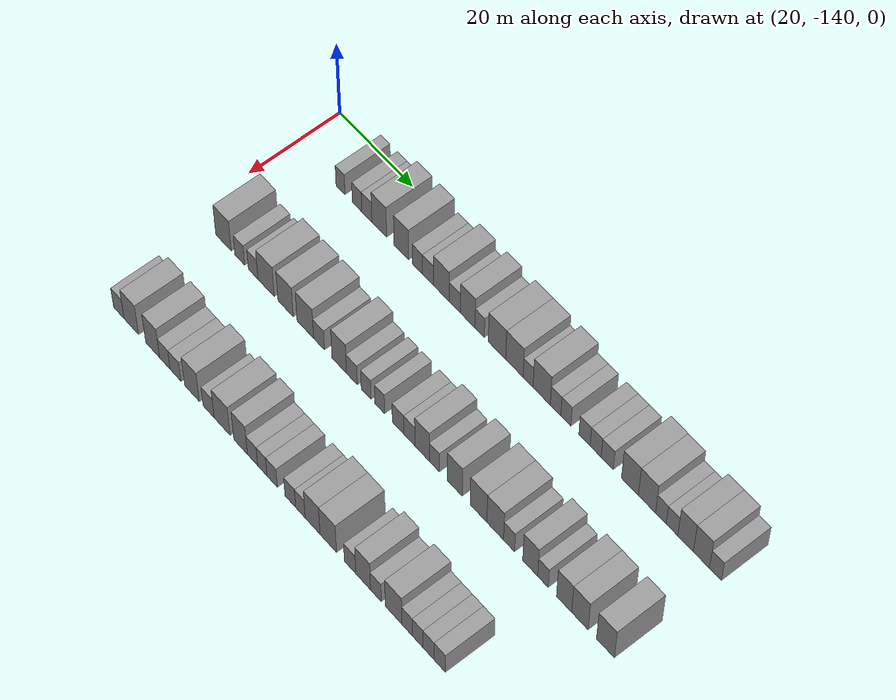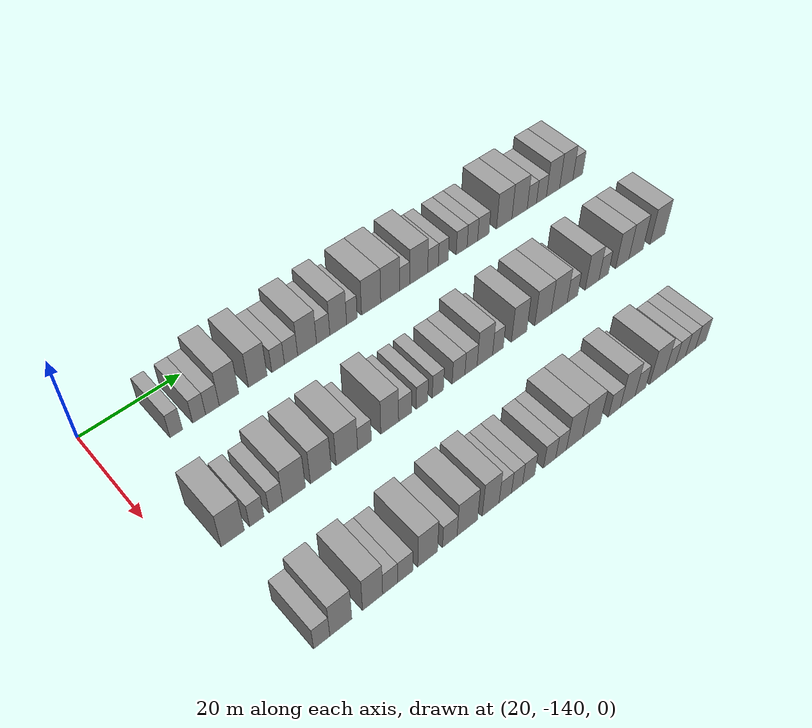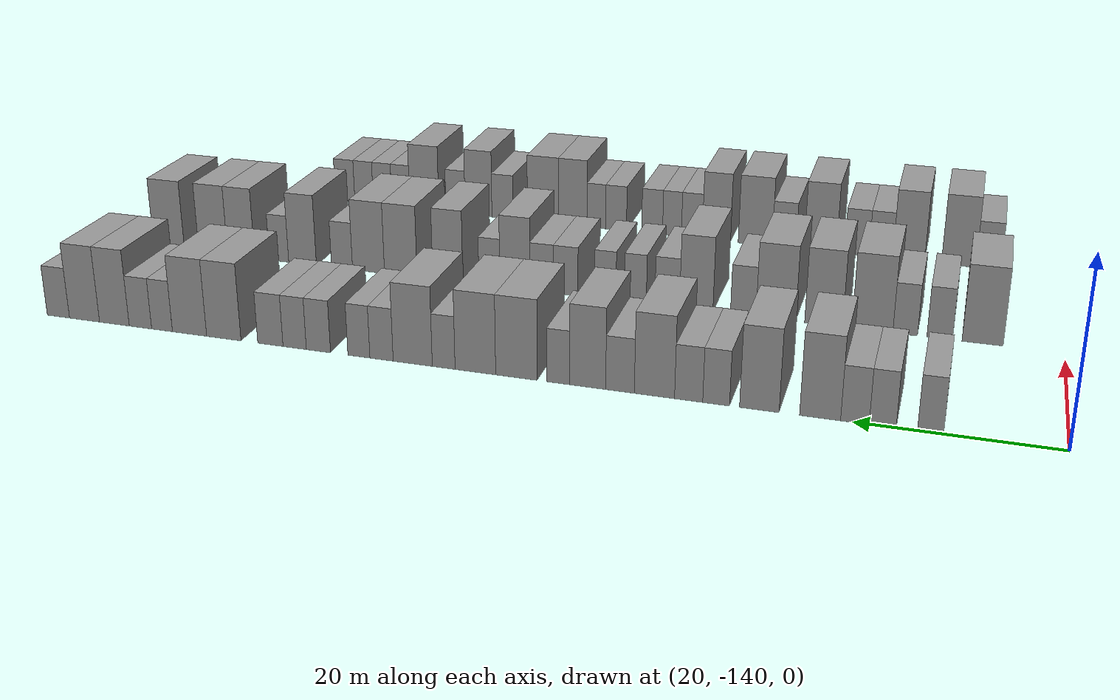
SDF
<sdf version="1.6">
 <world name="default">
  <model name="building_61">
   <static>1</static>
   <pose>25.0000 -127.3157 0 0.000000 0.000000 0.000000</pose>
   <link name="link">
    <pose>0 0 3.00 0 0 0</pose>
    <collision name="collision"><geometry><box><size>10.0000 2.4421 6.0000</size></box></geometry></collision>
    <visual name="visual">
     <cast_shadows>0</cast_shadows>
     <geometry><box><size>10.0000 2.4421 6.0000</size></box></geometry>
     <material>
      <script>
       <uri>model://grey_wall/materials/scripts</uri>
       <uri>model://grey_wall/materials/textures</uri>
       <name>vrc/grey_wall</name>
      </script>
     </material>
    </visual>
   </link>
  </model>
  <model name="building_62">
   <static>1</static>
   <pose>25.0000 -122.8152 0 0.000000 0.000000 0.000000</pose>
   <link name="link">
    <pose>0 0 3.00 0 0 0</pose>
    <collision name="collision"><geometry><box><size>10.0000 2.5589 6.0000</size></box></geometry></collision>
    <visual name="visual">
     <cast_shadows>0</cast_shadows>
     <geometry><box><size>10.0000 2.5589 6.0000</size></box></geometry>
     <material>
      <script>
       <uri>model://grey_wall/materials/scripts</uri>
       <uri>model://grey_wall/materials/textures</uri>
       <name>vrc/grey_wall</name>
      </script>
     </material>
    </visual>
   </link>
  </model>
  <model name="building_63">
   <static>1</static>
   <pose>25.0000 -120.1685 0 0.000000 0.000000 0.000000</pose>
   <link name="link">
    <pose>0 0 3.00 0 0 0</pose>
    <collision name="collision"><geometry><box><size>10.0000 2.7345 6.0000</size></box></geometry></collision>
    <visual name="visual">
     <cast_shadows>0</cast_shadows>
     <geometry><box><size>10.0000 2.7345 6.0000</size></box></geometry>
     <material>
      <script>
       <uri>model://grey_wall/materials/scripts</uri>
       <uri>model://grey_wall/materials/textures</uri>
       <name>vrc/grey_wall</name>
      </script>
     </material>
    </visual>
   </link>
  </model>
  <model name="building_64">
   <static>1</static>
   <pose>25.0000 -116.8165 0 0.000000 0.000000 0.000000</pose>
   <link name="link">
    <pose>0 0 4.50 0 0 0</pose>
    <collision name="collision"><geometry><box><size>10.0000 3.9694 9.0000</size></box></geometry></collision>
    <visual name="visual">
     <cast_shadows>0</cast_shadows>
     <geometry><box><size>10.0000 3.9694 9.0000</size></box></geometry>
     <material>
      <script>
       <uri>model://grey_wall/materials/scripts</uri>
       <uri>model://grey_wall/materials/textures</uri>
       <name>vrc/grey_wall</name>
      </script>
     </material>
    </visual>
   </link>
  </model>
  <model name="building_65">
   <static>1</static>
   <pose>25.0000 -110.8761 0 0.000000 0.000000 0.000000</pose>
   <link name="link">
    <pose>0 0 4.50 0 0 0</pose>
    <collision name="collision"><geometry><box><size>10.0000 3.9116 9.0000</size></box></geometry></collision>
    <visual name="visual">
     <cast_shadows>0</cast_shadows>
     <geometry><box><size>10.0000 3.9116 9.0000</size></box></geometry>
     <material>
      <script>
       <uri>model://grey_wall/materials/scripts</uri>
       <uri>model://grey_wall/materials/textures</uri>
       <name>vrc/grey_wall</name>
      </script>
     </material>
    </visual>
   </link>
  </model>
  <model name="building_66">
   <static>1</static>
   <pose>25.0000 -106.5734 0 0.000000 0.000000 0.000000</pose>
   <link name="link">
    <pose>0 0 3.00 0 0 0</pose>
    <collision name="collision"><geometry><box><size>10.0000 2.6937 6.0000</size></box></geometry></collision>
    <visual name="visual">
     <cast_shadows>0</cast_shadows>
     <geometry><box><size>10.0000 2.6937 6.0000</size></box></geometry>
     <material>
      <script>
       <uri>model://grey_wall/materials/scripts</uri>
       <uri>model://grey_wall/materials/textures</uri>
       <name>vrc/grey_wall</name>
      </script>
     </material>
    </visual>
   </link>
  </model>
  <model name="building_67">
   <static>1</static>
   <pose>25.0000 -103.7981 0 0.000000 0.000000 0.000000</pose>
   <link name="link">
    <pose>0 0 3.00 0 0 0</pose>
    <collision name="collision"><geometry><box><size>10.0000 2.8570 6.0000</size></box></geometry></collision>
    <visual name="visual">
     <cast_shadows>0</cast_shadows>
     <geometry><box><size>10.0000 2.8570 6.0000</size></box></geometry>
     <material>
      <script>
       <uri>model://grey_wall/materials/scripts</uri>
       <uri>model://grey_wall/materials/textures</uri>
       <name>vrc/grey_wall</name>
      </script>
     </material>
    </visual>
   </link>
  </model>
  <model name="building_68">
   <static>1</static>
   <pose>25.0000 -100.3039 0 0.000000 0.000000 0.000000</pose>
   <link name="link">
    <pose>0 0 4.50 0 0 0</pose>
    <collision name="collision"><geometry><box><size>10.0000 4.1313 9.0000</size></box></geometry></collision>
    <visual name="visual">
     <cast_shadows>0</cast_shadows>
     <geometry><box><size>10.0000 4.1313 9.0000</size></box></geometry>
     <material>
      <script>
       <uri>model://grey_wall/materials/scripts</uri>
       <uri>model://grey_wall/materials/textures</uri>
       <name>vrc/grey_wall</name>
      </script>
     </material>
    </visual>
   </link>
  </model>
  <model name="building_69">
   <static>1</static>
   <pose>25.0000 -96.7492 0 0.000000 0.000000 0.000000</pose>
   <link name="link">
    <pose>0 0 3.00 0 0 0</pose>
    <collision name="collision"><geometry><box><size>10.0000 2.9780 6.0000</size></box></geometry></collision>
    <visual name="visual">
     <cast_shadows>0</cast_shadows>
     <geometry><box><size>10.0000 2.9780 6.0000</size></box></geometry>
     <material>
      <script>
       <uri>model://grey_wall/materials/scripts</uri>
       <uri>model://grey_wall/materials/textures</uri>
       <name>vrc/grey_wall</name>
      </script>
     </material>
    </visual>
   </link>
  </model>
  <model name="building_70">
   <static>1</static>
   <pose>25.0000 -93.3623 0 0.000000 0.000000 0.000000</pose>
   <link name="link">
    <pose>0 0 4.50 0 0 0</pose>
    <collision name="collision"><geometry><box><size>10.0000 3.7958 9.0000</size></box></geometry></collision>
    <visual name="visual">
     <cast_shadows>0</cast_shadows>
     <geometry><box><size>10.0000 3.7958 9.0000</size></box></geometry>
     <material>
      <script>
       <uri>model://grey_wall/materials/scripts</uri>
       <uri>model://grey_wall/materials/textures</uri>
       <name>vrc/grey_wall</name>
      </script>
     </material>
    </visual>
   </link>
  </model>
  <model name="building_71">
   <static>1</static>
   <pose>25.0000 -90.2503 0 0.000000 0.000000 0.000000</pose>
   <link name="link">
    <pose>0 0 3.00 0 0 0</pose>
    <collision name="collision"><geometry><box><size>10.0000 2.4283 6.0000</size></box></geometry></collision>
    <visual name="visual">
     <cast_shadows>0</cast_shadows>
     <geometry><box><size>10.0000 2.4283 6.0000</size></box></geometry>
     <material>
      <script>
       <uri>model://grey_wall/materials/scripts</uri>
       <uri>model://grey_wall/materials/textures</uri>
       <name>vrc/grey_wall</name>
      </script>
     </material>
    </visual>
   </link>
  </model>
  <model name="building_72">
   <static>1</static>
   <pose>25.0000 -85.7949 0 0.000000 0.000000 0.000000</pose>
   <link name="link">
    <pose>0 0 4.50 0 0 0</pose>
    <collision name="collision"><geometry><box><size>10.0000 4.4824 9.0000</size></box></geometry></collision>
    <visual name="visual">
     <cast_shadows>0</cast_shadows>
     <geometry><box><size>10.0000 4.4824 9.0000</size></box></geometry>
     <material>
      <script>
       <uri>model://grey_wall/materials/scripts</uri>
       <uri>model://grey_wall/materials/textures</uri>
       <name>vrc/grey_wall</name>
      </script>
     </material>
    </visual>
   </link>
  </model>
  <model name="building_73">
   <static>1</static>
   <pose>25.0000 -81.3337 0 0.000000 0.000000 0.000000</pose>
   <link name="link">
    <pose>0 0 4.50 0 0 0</pose>
    <collision name="collision"><geometry><box><size>10.0000 4.4401 9.0000</size></box></geometry></collision>
    <visual name="visual">
     <cast_shadows>0</cast_shadows>
     <geometry><box><size>10.0000 4.4401 9.0000</size></box></geometry>
     <material>
      <script>
       <uri>model://grey_wall/materials/scripts</uri>
       <uri>model://grey_wall/materials/textures</uri>
       <name>vrc/grey_wall</name>
      </script>
     </material>
    </visual>
   </link>
  </model>
  <model name="building_74">
   <static>1</static>
   <pose>25.0000 -77.8510 0 0.000000 0.000000 0.000000</pose>
   <link name="link">
    <pose>0 0 3.00 0 0 0</pose>
    <collision name="collision"><geometry><box><size>10.0000 2.5253 6.0000</size></box></geometry></collision>
    <visual name="visual">
     <cast_shadows>0</cast_shadows>
     <geometry><box><size>10.0000 2.5253 6.0000</size></box></geometry>
     <material>
      <script>
       <uri>model://grey_wall/materials/scripts</uri>
       <uri>model://grey_wall/materials/textures</uri>
       <name>vrc/grey_wall</name>
      </script>
     </material>
    </visual>
   </link>
  </model>
  <model name="building_75">
   <static>1</static>
   <pose>25.0000 -74.3965 0 0.000000 0.000000 0.000000</pose>
   <link name="link">
    <pose>0 0 4.50 0 0 0</pose>
    <collision name="collision"><geometry><box><size>10.0000 4.3838 9.0000</size></box></geometry></collision>
    <visual name="visual">
     <cast_shadows>0</cast_shadows>
     <geometry><box><size>10.0000 4.3838 9.0000</size></box></geometry>
     <material>
      <script>
       <uri>model://grey_wall/materials/scripts</uri>
       <uri>model://grey_wall/materials/textures</uri>
       <name>vrc/grey_wall</name>
      </script>
     </material>
    </visual>
   </link>
  </model>
  <model name="building_76">
   <static>1</static>
   <pose>25.0000 -70.8849 0 0.000000 0.000000 0.000000</pose>
   <link name="link">
    <pose>0 0 3.00 0 0 0</pose>
    <collision name="collision"><geometry><box><size>10.0000 2.6394 6.0000</size></box></geometry></collision>
    <visual name="visual">
     <cast_shadows>0</cast_shadows>
     <geometry><box><size>10.0000 2.6394 6.0000</size></box></geometry>
     <material>
      <script>
       <uri>model://grey_wall/materials/scripts</uri>
       <uri>model://grey_wall/materials/textures</uri>
       <name>vrc/grey_wall</name>
      </script>
     </material>
    </visual>
   </link>
  </model>
  <model name="building_77">
   <static>1</static>
   <pose>25.0000 -68.3097 0 0.000000 0.000000 0.000000</pose>
   <link name="link">
    <pose>0 0 3.00 0 0 0</pose>
    <collision name="collision"><geometry><box><size>10.0000 2.5110 6.0000</size></box></geometry></collision>
    <visual name="visual">
     <cast_shadows>0</cast_shadows>
     <geometry><box><size>10.0000 2.5110 6.0000</size></box></geometry>
     <material>
      <script>
       <uri>model://grey_wall/materials/scripts</uri>
       <uri>model://grey_wall/materials/textures</uri>
       <name>vrc/grey_wall</name>
      </script>
     </material>
    </visual>
   </link>
  </model>
  <model name="building_78">
   <static>1</static>
   <pose>25.0000 -63.6502 0 0.000000 0.000000 0.000000</pose>
   <link name="link">
    <pose>0 0 3.00 0 0 0</pose>
    <collision name="collision"><geometry><box><size>10.0000 2.8079 6.0000</size></box></geometry></collision>
    <visual name="visual">
     <cast_shadows>0</cast_shadows>
     <geometry><box><size>10.0000 2.8079 6.0000</size></box></geometry>
     <material>
      <script>
       <uri>model://grey_wall/materials/scripts</uri>
       <uri>model://grey_wall/materials/textures</uri>
       <name>vrc/grey_wall</name>
      </script>
     </material>
    </visual>
   </link>
  </model>
  <model name="building_79">
   <static>1</static>
   <pose>25.0000 -60.8801 0 0.000000 0.000000 0.000000</pose>
   <link name="link">
    <pose>0 0 3.00 0 0 0</pose>
    <collision name="collision"><geometry><box><size>10.0000 2.7323 6.0000</size></box></geometry></collision>
    <visual name="visual">
     <cast_shadows>0</cast_shadows>
     <geometry><box><size>10.0000 2.7323 6.0000</size></box></geometry>
     <material>
      <script>
       <uri>model://grey_wall/materials/scripts</uri>
       <uri>model://grey_wall/materials/textures</uri>
       <name>vrc/grey_wall</name>
      </script>
     </material>
    </visual>
   </link>
  </model>
  <model name="building_80">
   <static>1</static>
   <pose>25.0000 -58.0221 0 0.000000 0.000000 0.000000</pose>
   <link name="link">
    <pose>0 0 3.00 0 0 0</pose>
    <collision name="collision"><geometry><box><size>10.0000 2.9838 6.0000</size></box></geometry></collision>
    <visual name="visual">
     <cast_shadows>0</cast_shadows>
     <geometry><box><size>10.0000 2.9838 6.0000</size></box></geometry>
     <material>
      <script>
       <uri>model://grey_wall/materials/scripts</uri>
       <uri>model://grey_wall/materials/textures</uri>
       <name>vrc/grey_wall</name>
      </script>
     </material>
    </visual>
   </link>
  </model>
  <model name="building_81">
   <static>1</static>
   <pose>25.0000 -52.4625 0 0.000000 0.000000 0.000000</pose>
   <link name="link">
    <pose>0 0 4.50 0 0 0</pose>
    <collision name="collision"><geometry><box><size>10.0000 4.1354 9.0000</size></box></geometry></collision>
    <visual name="visual">
     <cast_shadows>0</cast_shadows>
     <geometry><box><size>10.0000 4.1354 9.0000</size></box></geometry>
     <material>
      <script>
       <uri>model://grey_wall/materials/scripts</uri>
       <uri>model://grey_wall/materials/textures</uri>
       <name>vrc/grey_wall</name>
      </script>
     </material>
    </visual>
   </link>
  </model>
  <model name="building_82">
   <static>1</static>
   <pose>25.0000 -48.3096 0 0.000000 0.000000 0.000000</pose>
   <link name="link">
    <pose>0 0 4.50 0 0 0</pose>
    <collision name="collision"><geometry><box><size>10.0000 4.1704 9.0000</size></box></geometry></collision>
    <visual name="visual">
     <cast_shadows>0</cast_shadows>
     <geometry><box><size>10.0000 4.1704 9.0000</size></box></geometry>
     <material>
      <script>
       <uri>model://grey_wall/materials/scripts</uri>
       <uri>model://grey_wall/materials/textures</uri>
       <name>vrc/grey_wall</name>
      </script>
     </material>
    </visual>
   </link>
  </model>
  <model name="building_83">
   <static>1</static>
   <pose>25.0000 -44.9430 0 0.000000 0.000000 0.000000</pose>
   <link name="link">
    <pose>0 0 3.00 0 0 0</pose>
    <collision name="collision"><geometry><box><size>10.0000 2.5627 6.0000</size></box></geometry></collision>
    <visual name="visual">
     <cast_shadows>0</cast_shadows>
     <geometry><box><size>10.0000 2.5627 6.0000</size></box></geometry>
     <material>
      <script>
       <uri>model://grey_wall/materials/scripts</uri>
       <uri>model://grey_wall/materials/textures</uri>
       <name>vrc/grey_wall</name>
      </script>
     </material>
    </visual>
   </link>
  </model>
  <model name="building_84">
   <static>1</static>
   <pose>25.0000 -42.2696 0 0.000000 0.000000 0.000000</pose>
   <link name="link">
    <pose>0 0 3.00 0 0 0</pose>
    <collision name="collision"><geometry><box><size>10.0000 2.7843 6.0000</size></box></geometry></collision>
    <visual name="visual">
     <cast_shadows>0</cast_shadows>
     <geometry><box><size>10.0000 2.7843 6.0000</size></box></geometry>
     <material>
      <script>
       <uri>model://grey_wall/materials/scripts</uri>
       <uri>model://grey_wall/materials/textures</uri>
       <name>vrc/grey_wall</name>
      </script>
     </material>
    </visual>
   </link>
  </model>
  <model name="building_85">
   <static>1</static>
   <pose>25.0000 -39.0115 0 0.000000 0.000000 0.000000</pose>
   <link name="link">
    <pose>0 0 4.50 0 0 0</pose>
    <collision name="collision"><geometry><box><size>10.0000 3.7319 9.0000</size></box></geometry></collision>
    <visual name="visual">
     <cast_shadows>0</cast_shadows>
     <geometry><box><size>10.0000 3.7319 9.0000</size></box></geometry>
     <material>
      <script>
       <uri>model://grey_wall/materials/scripts</uri>
       <uri>model://grey_wall/materials/textures</uri>
       <name>vrc/grey_wall</name>
      </script>
     </material>
    </visual>
   </link>
  </model>
  <model name="building_86">
   <static>1</static>
   <pose>25.0000 -35.2371 0 0.000000 0.000000 0.000000</pose>
   <link name="link">
    <pose>0 0 4.50 0 0 0</pose>
    <collision name="collision"><geometry><box><size>10.0000 3.8169 9.0000</size></box></geometry></collision>
    <visual name="visual">
     <cast_shadows>0</cast_shadows>
     <geometry><box><size>10.0000 3.8169 9.0000</size></box></geometry>
     <material>
      <script>
       <uri>model://grey_wall/materials/scripts</uri>
       <uri>model://grey_wall/materials/textures</uri>
       <name>vrc/grey_wall</name>
      </script>
     </material>
    </visual>
   </link>
  </model>
  <model name="building_87">
   <static>1</static>
   <pose>25.0000 -31.9062 0 0.000000 0.000000 0.000000</pose>
   <link name="link">
    <pose>0 0 3.00 0 0 0</pose>
    <collision name="collision"><geometry><box><size>10.0000 2.8450 6.0000</size></box></geometry></collision>
    <visual name="visual">
     <cast_shadows>0</cast_shadows>
     <geometry><box><size>10.0000 2.8450 6.0000</size></box></geometry>
     <material>
      <script>
       <uri>model://grey_wall/materials/scripts</uri>
       <uri>model://grey_wall/materials/textures</uri>
       <name>vrc/grey_wall</name>
      </script>
     </material>
    </visual>
   </link>
  </model>
  <model name="building_251">
   <static>1</static>
   <pose>47.0000 -131.4908 0 0.000000 0.000000 0.000000</pose>
   <link name="link">
    <pose>0 0 4.50 0 0 0</pose>
    <collision name="collision"><geometry><box><size>10.0000 4.2946 9.0000</size></box></geometry></collision>
    <visual name="visual">
     <cast_shadows>0</cast_shadows>
     <geometry><box><size>10.0000 4.2946 9.0000</size></box></geometry>
     <material>
      <script>
       <uri>model://grey_wall/materials/scripts</uri>
       <uri>model://grey_wall/materials/textures</uri>
       <name>vrc/grey_wall</name>
      </script>
     </material>
    </visual>
   </link>
  </model>
  <model name="building_252">
   <static>1</static>
   <pose>47.0000 -126.9876 0 0.000000 0.000000 0.000000</pose>
   <link name="link">
    <pose>0 0 3.00 0 0 0</pose>
    <collision name="collision"><geometry><box><size>10.0000 2.7116 6.0000</size></box></geometry></collision>
    <visual name="visual">
     <cast_shadows>0</cast_shadows>
     <geometry><box><size>10.0000 2.7116 6.0000</size></box></geometry>
     <material>
      <script>
       <uri>model://grey_wall/materials/scripts</uri>
       <uri>model://grey_wall/materials/textures</uri>
       <name>vrc/grey_wall</name>
      </script>
     </material>
    </visual>
   </link>
  </model>
  <model name="building_253">
   <static>1</static>
   <pose>47.0000 -123.3090 0 0.000000 0.000000 0.000000</pose>
   <link name="link">
    <pose>0 0 3.00 0 0 0</pose>
    <collision name="collision"><geometry><box><size>10.0000 2.6456 6.0000</size></box></geometry></collision>
    <visual name="visual">
     <cast_shadows>0</cast_shadows>
     <geometry><box><size>10.0000 2.6456 6.0000</size></box></geometry>
     <material>
      <script>
       <uri>model://grey_wall/materials/scripts</uri>
       <uri>model://grey_wall/materials/textures</uri>
       <name>vrc/grey_wall</name>
      </script>
     </material>
    </visual>
   </link>
  </model>
  <model name="building_254">
   <static>1</static>
   <pose>47.0000 -119.7689 0 0.000000 0.000000 0.000000</pose>
   <link name="link">
    <pose>0 0 4.50 0 0 0</pose>
    <collision name="collision"><geometry><box><size>10.0000 4.4346 9.0000</size></box></geometry></collision>
    <visual name="visual">
     <cast_shadows>0</cast_shadows>
     <geometry><box><size>10.0000 4.4346 9.0000</size></box></geometry>
     <material>
      <script>
       <uri>model://grey_wall/materials/scripts</uri>
       <uri>model://grey_wall/materials/textures</uri>
       <name>vrc/grey_wall</name>
      </script>
     </material>
    </visual>
   </link>
  </model>
  <model name="building_255">
   <static>1</static>
   <pose>47.0000 -114.4624 0 0.000000 0.000000 0.000000</pose>
   <link name="link">
    <pose>0 0 4.50 0 0 0</pose>
    <collision name="collision"><geometry><box><size>10.0000 4.1786 9.0000</size></box></geometry></collision>
    <visual name="visual">
     <cast_shadows>0</cast_shadows>
     <geometry><box><size>10.0000 4.1786 9.0000</size></box></geometry>
     <material>
      <script>
       <uri>model://grey_wall/materials/scripts</uri>
       <uri>model://grey_wall/materials/textures</uri>
       <name>vrc/grey_wall</name>
      </script>
     </material>
    </visual>
   </link>
  </model>
  <model name="building_256">
   <static>1</static>
   <pose>47.0000 -109.1529 0 0.000000 0.000000 0.000000</pose>
   <link name="link">
    <pose>0 0 4.50 0 0 0</pose>
    <collision name="collision"><geometry><box><size>10.0000 4.4403 9.0000</size></box></geometry></collision>
    <visual name="visual">
     <cast_shadows>0</cast_shadows>
     <geometry><box><size>10.0000 4.4403 9.0000</size></box></geometry>
     <material>
      <script>
       <uri>model://grey_wall/materials/scripts</uri>
       <uri>model://grey_wall/materials/textures</uri>
       <name>vrc/grey_wall</name>
      </script>
     </material>
    </visual>
   </link>
  </model>
  <model name="building_257">
   <static>1</static>
   <pose>47.0000 -105.4867 0 0.000000 0.000000 0.000000</pose>
   <link name="link">
    <pose>0 0 3.00 0 0 0</pose>
    <collision name="collision"><geometry><box><size>10.0000 2.8920 6.0000</size></box></geometry></collision>
    <visual name="visual">
     <cast_shadows>0</cast_shadows>
     <geometry><box><size>10.0000 2.8920 6.0000</size></box></geometry>
     <material>
      <script>
       <uri>model://grey_wall/materials/scripts</uri>
       <uri>model://grey_wall/materials/textures</uri>
       <name>vrc/grey_wall</name>
      </script>
     </material>
    </visual>
   </link>
  </model>
  <model name="building_258">
   <static>1</static>
   <pose>47.0000 -100.1195 0 0.000000 0.000000 0.000000</pose>
   <link name="link">
    <pose>0 0 4.50 0 0 0</pose>
    <collision name="collision"><geometry><box><size>10.0000 3.8426 9.0000</size></box></geometry></collision>
    <visual name="visual">
     <cast_shadows>0</cast_shadows>
     <geometry><box><size>10.0000 3.8426 9.0000</size></box></geometry>
     <material>
      <script>
       <uri>model://grey_wall/materials/scripts</uri>
       <uri>model://grey_wall/materials/textures</uri>
       <name>vrc/grey_wall</name>
      </script>
     </material>
    </visual>
   </link>
  </model>
  <model name="building_259">
   <static>1</static>
   <pose>47.0000 -96.7625 0 0.000000 0.000000 0.000000</pose>
   <link name="link">
    <pose>0 0 3.00 0 0 0</pose>
    <collision name="collision"><geometry><box><size>10.0000 2.8714 6.0000</size></box></geometry></collision>
    <visual name="visual">
     <cast_shadows>0</cast_shadows>
     <geometry><box><size>10.0000 2.8714 6.0000</size></box></geometry>
     <material>
      <script>
       <uri>model://grey_wall/materials/scripts</uri>
       <uri>model://grey_wall/materials/textures</uri>
       <name>vrc/grey_wall</name>
      </script>
     </material>
    </visual>
   </link>
  </model>
  <model name="building_260">
   <static>1</static>
   <pose>47.0000 -93.0378 0 0.000000 0.000000 0.000000</pose>
   <link name="link">
    <pose>0 0 3.00 0 0 0</pose>
    <collision name="collision"><geometry><box><size>10.0000 2.5780 6.0000</size></box></geometry></collision>
    <visual name="visual">
     <cast_shadows>0</cast_shadows>
     <geometry><box><size>10.0000 2.5780 6.0000</size></box></geometry>
     <material>
      <script>
       <uri>model://grey_wall/materials/scripts</uri>
       <uri>model://grey_wall/materials/textures</uri>
       <name>vrc/grey_wall</name>
      </script>
     </material>
    </visual>
   </link>
  </model>
  <model name="building_261">
   <static>1</static>
   <pose>47.0000 -89.4829 0 0.000000 0.000000 0.000000</pose>
   <link name="link">
    <pose>0 0 3.00 0 0 0</pose>
    <collision name="collision"><geometry><box><size>10.0000 2.5318 6.0000</size></box></geometry></collision>
    <visual name="visual">
     <cast_shadows>0</cast_shadows>
     <geometry><box><size>10.0000 2.5318 6.0000</size></box></geometry>
     <material>
      <script>
       <uri>model://grey_wall/materials/scripts</uri>
       <uri>model://grey_wall/materials/textures</uri>
       <name>vrc/grey_wall</name>
      </script>
     </material>
    </visual>
   </link>
  </model>
  <model name="building_262">
   <static>1</static>
   <pose>47.0000 -84.7403 0 0.000000 0.000000 0.000000</pose>
   <link name="link">
    <pose>0 0 3.00 0 0 0</pose>
    <collision name="collision"><geometry><box><size>10.0000 2.9535 6.0000</size></box></geometry></collision>
    <visual name="visual">
     <cast_shadows>0</cast_shadows>
     <geometry><box><size>10.0000 2.9535 6.0000</size></box></geometry>
     <material>
      <script>
       <uri>model://grey_wall/materials/scripts</uri>
       <uri>model://grey_wall/materials/textures</uri>
       <name>vrc/grey_wall</name>
      </script>
     </material>
    </visual>
   </link>
  </model>
  <model name="building_263">
   <static>1</static>
   <pose>47.0000 -81.8355 0 0.000000 0.000000 0.000000</pose>
   <link name="link">
    <pose>0 0 3.00 0 0 0</pose>
    <collision name="collision"><geometry><box><size>10.0000 2.8560 6.0000</size></box></geometry></collision>
    <visual name="visual">
     <cast_shadows>0</cast_shadows>
     <geometry><box><size>10.0000 2.8560 6.0000</size></box></geometry>
     <material>
      <script>
       <uri>model://grey_wall/materials/scripts</uri>
       <uri>model://grey_wall/materials/textures</uri>
       <name>vrc/grey_wall</name>
      </script>
     </material>
    </visual>
   </link>
  </model>
  <model name="building_264">
   <static>1</static>
   <pose>47.0000 -78.5680 0 0.000000 0.000000 0.000000</pose>
   <link name="link">
    <pose>0 0 4.50 0 0 0</pose>
    <collision name="collision"><geometry><box><size>10.0000 3.6789 9.0000</size></box></geometry></collision>
    <visual name="visual">
     <cast_shadows>0</cast_shadows>
     <geometry><box><size>10.0000 3.6789 9.0000</size></box></geometry>
     <material>
      <script>
       <uri>model://grey_wall/materials/scripts</uri>
       <uri>model://grey_wall/materials/textures</uri>
       <name>vrc/grey_wall</name>
      </script>
     </material>
    </visual>
   </link>
  </model>
  <model name="building_265">
   <static>1</static>
   <pose>47.0000 -75.4325 0 0.000000 0.000000 0.000000</pose>
   <link name="link">
    <pose>0 0 3.00 0 0 0</pose>
    <collision name="collision"><geometry><box><size>10.0000 2.5922 6.0000</size></box></geometry></collision>
    <visual name="visual">
     <cast_shadows>0</cast_shadows>
     <geometry><box><size>10.0000 2.5922 6.0000</size></box></geometry>
     <material>
      <script>
       <uri>model://grey_wall/materials/scripts</uri>
       <uri>model://grey_wall/materials/textures</uri>
       <name>vrc/grey_wall</name>
      </script>
     </material>
    </visual>
   </link>
  </model>
  <model name="building_266">
   <static>1</static>
   <pose>47.0000 -70.2462 0 0.000000 0.000000 0.000000</pose>
   <link name="link">
    <pose>0 0 4.50 0 0 0</pose>
    <collision name="collision"><geometry><box><size>10.0000 3.7803 9.0000</size></box></geometry></collision>
    <visual name="visual">
     <cast_shadows>0</cast_shadows>
     <geometry><box><size>10.0000 3.7803 9.0000</size></box></geometry>
     <material>
      <script>
       <uri>model://grey_wall/materials/scripts</uri>
       <uri>model://grey_wall/materials/textures</uri>
       <name>vrc/grey_wall</name>
      </script>
     </material>
    </visual>
   </link>
  </model>
  <model name="building_267">
   <static>1</static>
   <pose>47.0000 -64.2700 0 0.000000 0.000000 0.000000</pose>
   <link name="link">
    <pose>0 0 4.50 0 0 0</pose>
    <collision name="collision"><geometry><box><size>10.0000 4.1722 9.0000</size></box></geometry></collision>
    <visual name="visual">
     <cast_shadows>0</cast_shadows>
     <geometry><box><size>10.0000 4.1722 9.0000</size></box></geometry>
     <material>
      <script>
       <uri>model://grey_wall/materials/scripts</uri>
       <uri>model://grey_wall/materials/textures</uri>
       <name>vrc/grey_wall</name>
      </script>
     </material>
    </visual>
   </link>
  </model>
  <model name="building_268">
   <static>1</static>
   <pose>47.0000 -60.1114 0 0.000000 0.000000 0.000000</pose>
   <link name="link">
    <pose>0 0 4.50 0 0 0</pose>
    <collision name="collision"><geometry><box><size>10.0000 4.1449 9.0000</size></box></geometry></collision>
    <visual name="visual">
     <cast_shadows>0</cast_shadows>
     <geometry><box><size>10.0000 4.1449 9.0000</size></box></geometry>
     <material>
      <script>
       <uri>model://grey_wall/materials/scripts</uri>
       <uri>model://grey_wall/materials/textures</uri>
       <name>vrc/grey_wall</name>
      </script>
     </material>
    </visual>
   </link>
  </model>
  <model name="building_269">
   <static>1</static>
   <pose>47.0000 -56.6689 0 0.000000 0.000000 0.000000</pose>
   <link name="link">
    <pose>0 0 3.00 0 0 0</pose>
    <collision name="collision"><geometry><box><size>10.0000 2.7401 6.0000</size></box></geometry></collision>
    <visual name="visual">
     <cast_shadows>0</cast_shadows>
     <geometry><box><size>10.0000 2.7401 6.0000</size></box></geometry>
     <material>
      <script>
       <uri>model://grey_wall/materials/scripts</uri>
       <uri>model://grey_wall/materials/textures</uri>
       <name>vrc/grey_wall</name>
      </script>
     </material>
    </visual>
   </link>
  </model>
  <model name="building_270">
   <static>1</static>
   <pose>47.0000 -51.4565 0 0.000000 0.000000 0.000000</pose>
   <link name="link">
    <pose>0 0 4.50 0 0 0</pose>
    <collision name="collision"><geometry><box><size>10.0000 3.6847 9.0000</size></box></geometry></collision>
    <visual name="visual">
     <cast_shadows>0</cast_shadows>
     <geometry><box><size>10.0000 3.6847 9.0000</size></box></geometry>
     <material>
      <script>
       <uri>model://grey_wall/materials/scripts</uri>
       <uri>model://grey_wall/materials/textures</uri>
       <name>vrc/grey_wall</name>
      </script>
     </material>
    </visual>
   </link>
  </model>
  <model name="building_271">
   <static>1</static>
   <pose>47.0000 -48.3287 0 0.000000 0.000000 0.000000</pose>
   <link name="link">
    <pose>0 0 3.00 0 0 0</pose>
    <collision name="collision"><geometry><box><size>10.0000 2.5707 6.0000</size></box></geometry></collision>
    <visual name="visual">
     <cast_shadows>0</cast_shadows>
     <geometry><box><size>10.0000 2.5707 6.0000</size></box></geometry>
     <material>
      <script>
       <uri>model://grey_wall/materials/scripts</uri>
       <uri>model://grey_wall/materials/textures</uri>
       <name>vrc/grey_wall</name>
      </script>
     </material>
    </visual>
   </link>
  </model>
  <model name="building_272">
   <static>1</static>
   <pose>47.0000 -43.2064 0 0.000000 0.000000 0.000000</pose>
   <link name="link">
    <pose>0 0 4.50 0 0 0</pose>
    <collision name="collision"><geometry><box><size>10.0000 3.6739 9.0000</size></box></geometry></collision>
    <visual name="visual">
     <cast_shadows>0</cast_shadows>
     <geometry><box><size>10.0000 3.6739 9.0000</size></box></geometry>
     <material>
      <script>
       <uri>model://grey_wall/materials/scripts</uri>
       <uri>model://grey_wall/materials/textures</uri>
       <name>vrc/grey_wall</name>
      </script>
     </material>
    </visual>
   </link>
  </model>
  <model name="building_273">
   <static>1</static>
   <pose>47.0000 -39.3895 0 0.000000 0.000000 0.000000</pose>
   <link name="link">
    <pose>0 0 4.50 0 0 0</pose>
    <collision name="collision"><geometry><box><size>10.0000 3.9600 9.0000</size></box></geometry></collision>
    <visual name="visual">
     <cast_shadows>0</cast_shadows>
     <geometry><box><size>10.0000 3.9600 9.0000</size></box></geometry>
     <material>
      <script>
       <uri>model://grey_wall/materials/scripts</uri>
       <uri>model://grey_wall/materials/textures</uri>
       <name>vrc/grey_wall</name>
      </script>
     </material>
    </visual>
   </link>
  </model>
  <model name="building_274">
   <static>1</static>
   <pose>47.0000 -33.2711 0 0.000000 0.000000 0.000000</pose>
   <link name="link">
    <pose>0 0 4.50 0 0 0</pose>
    <collision name="collision"><geometry><box><size>10.0000 4.2769 9.0000</size></box></geometry></collision>
    <visual name="visual">
     <cast_shadows>0</cast_shadows>
     <geometry><box><size>10.0000 4.2769 9.0000</size></box></geometry>
     <material>
      <script>
       <uri>model://grey_wall/materials/scripts</uri>
       <uri>model://grey_wall/materials/textures</uri>
       <name>vrc/grey_wall</name>
      </script>
     </material>
    </visual>
   </link>
  </model>
  <model name="building_439">
   <static>1</static>
   <pose>69.0000 -131.5310 0 0.000000 0.000000 0.000000</pose>
   <link name="link">
    <pose>0 0 3.00 0 0 0</pose>
    <collision name="collision"><geometry><box><size>10.0000 2.9448 6.0000</size></box></geometry></collision>
    <visual name="visual">
     <cast_shadows>0</cast_shadows>
     <geometry><box><size>10.0000 2.9448 6.0000</size></box></geometry>
     <material>
      <script>
       <uri>model://grey_wall/materials/scripts</uri>
       <uri>model://grey_wall/materials/textures</uri>
       <name>vrc/grey_wall</name>
      </script>
     </material>
    </visual>
   </link>
  </model>
  <model name="building_440">
   <static>1</static>
   <pose>69.0000 -128.0361 0 0.000000 0.000000 0.000000</pose>
   <link name="link">
    <pose>0 0 4.50 0 0 0</pose>
    <collision name="collision"><geometry><box><size>10.0000 4.0452 9.0000</size></box></geometry></collision>
    <visual name="visual">
     <cast_shadows>0</cast_shadows>
     <geometry><box><size>10.0000 4.0452 9.0000</size></box></geometry>
     <material>
      <script>
       <uri>model://grey_wall/materials/scripts</uri>
       <uri>model://grey_wall/materials/textures</uri>
       <name>vrc/grey_wall</name>
      </script>
     </material>
    </visual>
   </link>
  </model>
  <model name="building_441">
   <static>1</static>
   <pose>69.0000 -122.1017 0 0.000000 0.000000 0.000000</pose>
   <link name="link">
    <pose>0 0 4.50 0 0 0</pose>
    <collision name="collision"><geometry><box><size>10.0000 3.8236 9.0000</size></box></geometry></collision>
    <visual name="visual">
     <cast_shadows>0</cast_shadows>
     <geometry><box><size>10.0000 3.8236 9.0000</size></box></geometry>
     <material>
      <script>
       <uri>model://grey_wall/materials/scripts</uri>
       <uri>model://grey_wall/materials/textures</uri>
       <name>vrc/grey_wall</name>
      </script>
     </material>
    </visual>
   </link>
  </model>
  <model name="building_442">
   <static>1</static>
   <pose>69.0000 -118.7496 0 0.000000 0.000000 0.000000</pose>
   <link name="link">
    <pose>0 0 3.00 0 0 0</pose>
    <collision name="collision"><geometry><box><size>10.0000 2.8807 6.0000</size></box></geometry></collision>
    <visual name="visual">
     <cast_shadows>0</cast_shadows>
     <geometry><box><size>10.0000 2.8807 6.0000</size></box></geometry>
     <material>
      <script>
       <uri>model://grey_wall/materials/scripts</uri>
       <uri>model://grey_wall/materials/textures</uri>
       <name>vrc/grey_wall</name>
      </script>
     </material>
    </visual>
   </link>
  </model>
  <model name="building_443">
   <static>1</static>
   <pose>69.0000 -115.8196 0 0.000000 0.000000 0.000000</pose>
   <link name="link">
    <pose>0 0 3.00 0 0 0</pose>
    <collision name="collision"><geometry><box><size>10.0000 2.9792 6.0000</size></box></geometry></collision>
    <visual name="visual">
     <cast_shadows>0</cast_shadows>
     <geometry><box><size>10.0000 2.9792 6.0000</size></box></geometry>
     <material>
      <script>
       <uri>model://grey_wall/materials/scripts</uri>
       <uri>model://grey_wall/materials/textures</uri>
       <name>vrc/grey_wall</name>
      </script>
     </material>
    </visual>
   </link>
  </model>
  <model name="building_444">
   <static>1</static>
   <pose>69.0000 -111.3397 0 0.000000 0.000000 0.000000</pose>
   <link name="link">
    <pose>0 0 4.50 0 0 0</pose>
    <collision name="collision"><geometry><box><size>10.0000 3.9807 9.0000</size></box></geometry></collision>
    <visual name="visual">
     <cast_shadows>0</cast_shadows>
     <geometry><box><size>10.0000 3.9807 9.0000</size></box></geometry>
     <material>
      <script>
       <uri>model://grey_wall/materials/scripts</uri>
       <uri>model://grey_wall/materials/textures</uri>
       <name>vrc/grey_wall</name>
      </script>
     </material>
    </visual>
   </link>
  </model>
  <model name="building_445">
   <static>1</static>
   <pose>69.0000 -106.8497 0 0.000000 0.000000 0.000000</pose>
   <link name="link">
    <pose>0 0 3.00 0 0 0</pose>
    <collision name="collision"><geometry><box><size>10.0000 2.9993 6.0000</size></box></geometry></collision>
    <visual name="visual">
     <cast_shadows>0</cast_shadows>
     <geometry><box><size>10.0000 2.9993 6.0000</size></box></geometry>
     <material>
      <script>
       <uri>model://grey_wall/materials/scripts</uri>
       <uri>model://grey_wall/materials/textures</uri>
       <name>vrc/grey_wall</name>
      </script>
     </material>
    </visual>
   </link>
  </model>
  <model name="building_446">
   <static>1</static>
   <pose>69.0000 -103.2088 0 0.000000 0.000000 0.000000</pose>
   <link name="link">
    <pose>0 0 4.50 0 0 0</pose>
    <collision name="collision"><geometry><box><size>10.0000 4.2824 9.0000</size></box></geometry></collision>
    <visual name="visual">
     <cast_shadows>0</cast_shadows>
     <geometry><box><size>10.0000 4.2824 9.0000</size></box></geometry>
     <material>
      <script>
       <uri>model://grey_wall/materials/scripts</uri>
       <uri>model://grey_wall/materials/textures</uri>
       <name>vrc/grey_wall</name>
      </script>
     </material>
    </visual>
   </link>
  </model>
  <model name="building_447">
   <static>1</static>
   <pose>69.0000 -98.2643 0 0.000000 0.000000 0.000000</pose>
   <link name="link">
    <pose>0 0 4.50 0 0 0</pose>
    <collision name="collision"><geometry><box><size>10.0000 3.6067 9.0000</size></box></geometry></collision>
    <visual name="visual">
     <cast_shadows>0</cast_shadows>
     <geometry><box><size>10.0000 3.6067 9.0000</size></box></geometry>
     <material>
      <script>
       <uri>model://grey_wall/materials/scripts</uri>
       <uri>model://grey_wall/materials/textures</uri>
       <name>vrc/grey_wall</name>
      </script>
     </material>
    </visual>
   </link>
  </model>
  <model name="building_448">
   <static>1</static>
   <pose>69.0000 -95.1094 0 0.000000 0.000000 0.000000</pose>
   <link name="link">
    <pose>0 0 3.00 0 0 0</pose>
    <collision name="collision"><geometry><box><size>10.0000 2.7032 6.0000</size></box></geometry></collision>
    <visual name="visual">
     <cast_shadows>0</cast_shadows>
     <geometry><box><size>10.0000 2.7032 6.0000</size></box></geometry>
     <material>
      <script>
       <uri>model://grey_wall/materials/scripts</uri>
       <uri>model://grey_wall/materials/textures</uri>
       <name>vrc/grey_wall</name>
      </script>
     </material>
    </visual>
   </link>
  </model>
  <model name="building_449">
   <static>1</static>
   <pose>69.0000 -92.5349 0 0.000000 0.000000 0.000000</pose>
   <link name="link">
    <pose>0 0 3.00 0 0 0</pose>
    <collision name="collision"><geometry><box><size>10.0000 2.4457 6.0000</size></box></geometry></collision>
    <visual name="visual">
     <cast_shadows>0</cast_shadows>
     <geometry><box><size>10.0000 2.4457 6.0000</size></box></geometry>
     <material>
      <script>
       <uri>model://grey_wall/materials/scripts</uri>
       <uri>model://grey_wall/materials/textures</uri>
       <name>vrc/grey_wall</name>
      </script>
     </material>
    </visual>
   </link>
  </model>
  <model name="building_450">
   <static>1</static>
   <pose>69.0000 -89.9422 0 0.000000 0.000000 0.000000</pose>
   <link name="link">
    <pose>0 0 3.00 0 0 0</pose>
    <collision name="collision"><geometry><box><size>10.0000 2.7397 6.0000</size></box></geometry></collision>
    <visual name="visual">
     <cast_shadows>0</cast_shadows>
     <geometry><box><size>10.0000 2.7397 6.0000</size></box></geometry>
     <material>
      <script>
       <uri>model://grey_wall/materials/scripts</uri>
       <uri>model://grey_wall/materials/textures</uri>
       <name>vrc/grey_wall</name>
      </script>
     </material>
    </visual>
   </link>
  </model>
  <model name="building_451">
   <static>1</static>
   <pose>69.0000 -85.1822 0 0.000000 0.000000 0.000000</pose>
   <link name="link">
    <pose>0 0 3.00 0 0 0</pose>
    <collision name="collision"><geometry><box><size>10.0000 2.7802 6.0000</size></box></geometry></collision>
    <visual name="visual">
     <cast_shadows>0</cast_shadows>
     <geometry><box><size>10.0000 2.7802 6.0000</size></box></geometry>
     <material>
      <script>
       <uri>model://grey_wall/materials/scripts</uri>
       <uri>model://grey_wall/materials/textures</uri>
       <name>vrc/grey_wall</name>
      </script>
     </material>
    </visual>
   </link>
  </model>
  <model name="building_452">
   <static>1</static>
   <pose>69.0000 -82.5564 0 0.000000 0.000000 0.000000</pose>
   <link name="link">
    <pose>0 0 3.00 0 0 0</pose>
    <collision name="collision"><geometry><box><size>10.0000 2.4713 6.0000</size></box></geometry></collision>
    <visual name="visual">
     <cast_shadows>0</cast_shadows>
     <geometry><box><size>10.0000 2.4713 6.0000</size></box></geometry>
     <material>
      <script>
       <uri>model://grey_wall/materials/scripts</uri>
       <uri>model://grey_wall/materials/textures</uri>
       <name>vrc/grey_wall</name>
      </script>
     </material>
    </visual>
   </link>
  </model>
  <model name="building_453">
   <static>1</static>
   <pose>69.0000 -79.3956 0 0.000000 0.000000 0.000000</pose>
   <link name="link">
    <pose>0 0 4.50 0 0 0</pose>
    <collision name="collision"><geometry><box><size>10.0000 3.8503 9.0000</size></box></geometry></collision>
    <visual name="visual">
     <cast_shadows>0</cast_shadows>
     <geometry><box><size>10.0000 3.8503 9.0000</size></box></geometry>
     <material>
      <script>
       <uri>model://grey_wall/materials/scripts</uri>
       <uri>model://grey_wall/materials/textures</uri>
       <name>vrc/grey_wall</name>
      </script>
     </material>
    </visual>
   </link>
  </model>
  <model name="building_454">
   <static>1</static>
   <pose>69.0000 -75.3585 0 0.000000 0.000000 0.000000</pose>
   <link name="link">
    <pose>0 0 4.50 0 0 0</pose>
    <collision name="collision"><geometry><box><size>10.0000 4.2240 9.0000</size></box></geometry></collision>
    <visual name="visual">
     <cast_shadows>0</cast_shadows>
     <geometry><box><size>10.0000 4.2240 9.0000</size></box></geometry>
     <material>
      <script>
       <uri>model://grey_wall/materials/scripts</uri>
       <uri>model://grey_wall/materials/textures</uri>
       <name>vrc/grey_wall</name>
      </script>
     </material>
    </visual>
   </link>
  </model>
  <model name="building_455">
   <static>1</static>
   <pose>69.0000 -69.7989 0 0.000000 0.000000 0.000000</pose>
   <link name="link">
    <pose>0 0 3.00 0 0 0</pose>
    <collision name="collision"><geometry><box><size>10.0000 2.8951 6.0000</size></box></geometry></collision>
    <visual name="visual">
     <cast_shadows>0</cast_shadows>
     <geometry><box><size>10.0000 2.8951 6.0000</size></box></geometry>
     <material>
      <script>
       <uri>model://grey_wall/materials/scripts</uri>
       <uri>model://grey_wall/materials/textures</uri>
       <name>vrc/grey_wall</name>
      </script>
     </material>
    </visual>
   </link>
  </model>
  <model name="building_456">
   <static>1</static>
   <pose>69.0000 -66.4843 0 0.000000 0.000000 0.000000</pose>
   <link name="link">
    <pose>0 0 4.50 0 0 0</pose>
    <collision name="collision"><geometry><box><size>10.0000 3.7341 9.0000</size></box></geometry></collision>
    <visual name="visual">
     <cast_shadows>0</cast_shadows>
     <geometry><box><size>10.0000 3.7341 9.0000</size></box></geometry>
     <material>
      <script>
       <uri>model://grey_wall/materials/scripts</uri>
       <uri>model://grey_wall/materials/textures</uri>
       <name>vrc/grey_wall</name>
      </script>
     </material>
    </visual>
   </link>
  </model>
  <model name="building_457">
   <static>1</static>
   <pose>69.0000 -63.2688 0 0.000000 0.000000 0.000000</pose>
   <link name="link">
    <pose>0 0 3.00 0 0 0</pose>
    <collision name="collision"><geometry><box><size>10.0000 2.6969 6.0000</size></box></geometry></collision>
    <visual name="visual">
     <cast_shadows>0</cast_shadows>
     <geometry><box><size>10.0000 2.6969 6.0000</size></box></geometry>
     <material>
      <script>
       <uri>model://grey_wall/materials/scripts</uri>
       <uri>model://grey_wall/materials/textures</uri>
       <name>vrc/grey_wall</name>
      </script>
     </material>
    </visual>
   </link>
  </model>
  <model name="building_458">
   <static>1</static>
   <pose>69.0000 -58.8482 0 0.000000 0.000000 0.000000</pose>
   <link name="link">
    <pose>0 0 4.50 0 0 0</pose>
    <collision name="collision"><geometry><box><size>10.0000 4.1443 9.0000</size></box></geometry></collision>
    <visual name="visual">
     <cast_shadows>0</cast_shadows>
     <geometry><box><size>10.0000 4.1443 9.0000</size></box></geometry>
     <material>
      <script>
       <uri>model://grey_wall/materials/scripts</uri>
       <uri>model://grey_wall/materials/textures</uri>
       <name>vrc/grey_wall</name>
      </script>
     </material>
    </visual>
   </link>
  </model>
  <model name="building_459">
   <static>1</static>
   <pose>69.0000 -55.4904 0 0.000000 0.000000 0.000000</pose>
   <link name="link">
    <pose>0 0 3.00 0 0 0</pose>
    <collision name="collision"><geometry><box><size>10.0000 2.5714 6.0000</size></box></geometry></collision>
    <visual name="visual">
     <cast_shadows>0</cast_shadows>
     <geometry><box><size>10.0000 2.5714 6.0000</size></box></geometry>
     <material>
      <script>
       <uri>model://grey_wall/materials/scripts</uri>
       <uri>model://grey_wall/materials/textures</uri>
       <name>vrc/grey_wall</name>
      </script>
     </material>
    </visual>
   </link>
  </model>
  <model name="building_460">
   <static>1</static>
   <pose>69.0000 -52.8649 0 0.000000 0.000000 0.000000</pose>
   <link name="link">
    <pose>0 0 3.00 0 0 0</pose>
    <collision name="collision"><geometry><box><size>10.0000 2.6795 6.0000</size></box></geometry></collision>
    <visual name="visual">
     <cast_shadows>0</cast_shadows>
     <geometry><box><size>10.0000 2.6795 6.0000</size></box></geometry>
     <material>
      <script>
       <uri>model://grey_wall/materials/scripts</uri>
       <uri>model://grey_wall/materials/textures</uri>
       <name>vrc/grey_wall</name>
      </script>
     </material>
    </visual>
   </link>
  </model>
  <model name="building_461">
   <static>1</static>
   <pose>69.0000 -50.1800 0 0.000000 0.000000 0.000000</pose>
   <link name="link">
    <pose>0 0 3.00 0 0 0</pose>
    <collision name="collision"><geometry><box><size>10.0000 2.6902 6.0000</size></box></geometry></collision>
    <visual name="visual">
     <cast_shadows>0</cast_shadows>
     <geometry><box><size>10.0000 2.6902 6.0000</size></box></geometry>
     <material>
      <script>
       <uri>model://grey_wall/materials/scripts</uri>
       <uri>model://grey_wall/materials/textures</uri>
       <name>vrc/grey_wall</name>
      </script>
     </material>
    </visual>
   </link>
  </model>
  <model name="building_462">
   <static>1</static>
   <pose>69.0000 -47.4248 0 0.000000 0.000000 0.000000</pose>
   <link name="link">
    <pose>0 0 3.00 0 0 0</pose>
    <collision name="collision"><geometry><box><size>10.0000 2.8203 6.0000</size></box></geometry></collision>
    <visual name="visual">
     <cast_shadows>0</cast_shadows>
     <geometry><box><size>10.0000 2.8203 6.0000</size></box></geometry>
     <material>
      <script>
       <uri>model://grey_wall/materials/scripts</uri>
       <uri>model://grey_wall/materials/textures</uri>
       <name>vrc/grey_wall</name>
      </script>
     </material>
    </visual>
   </link>
  </model>
 </world>
</sdf>
